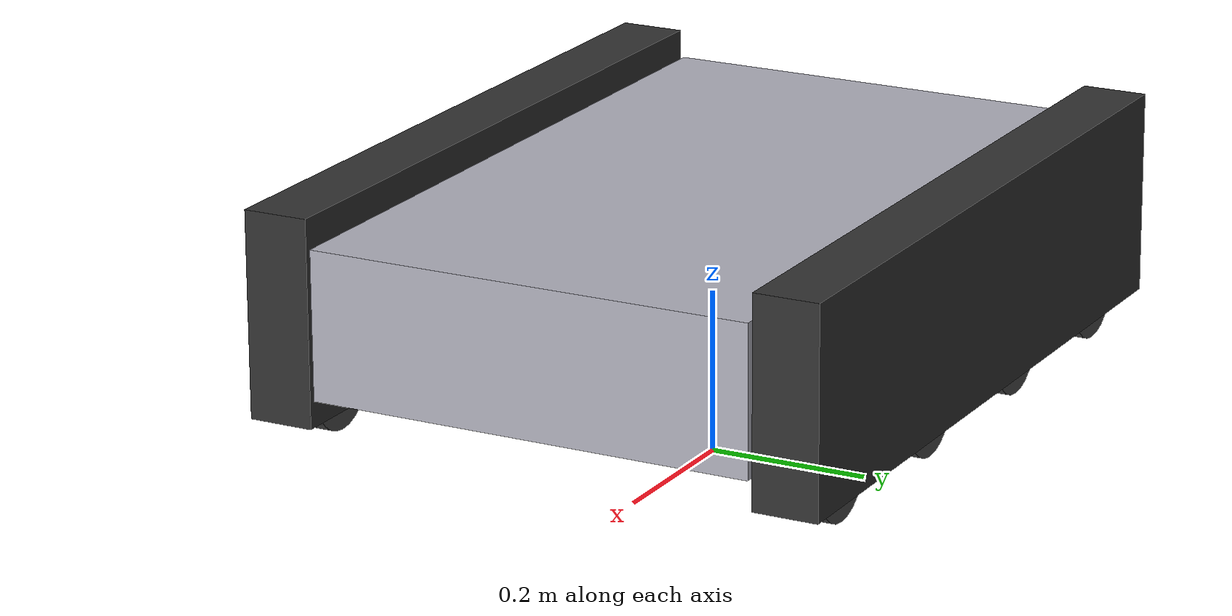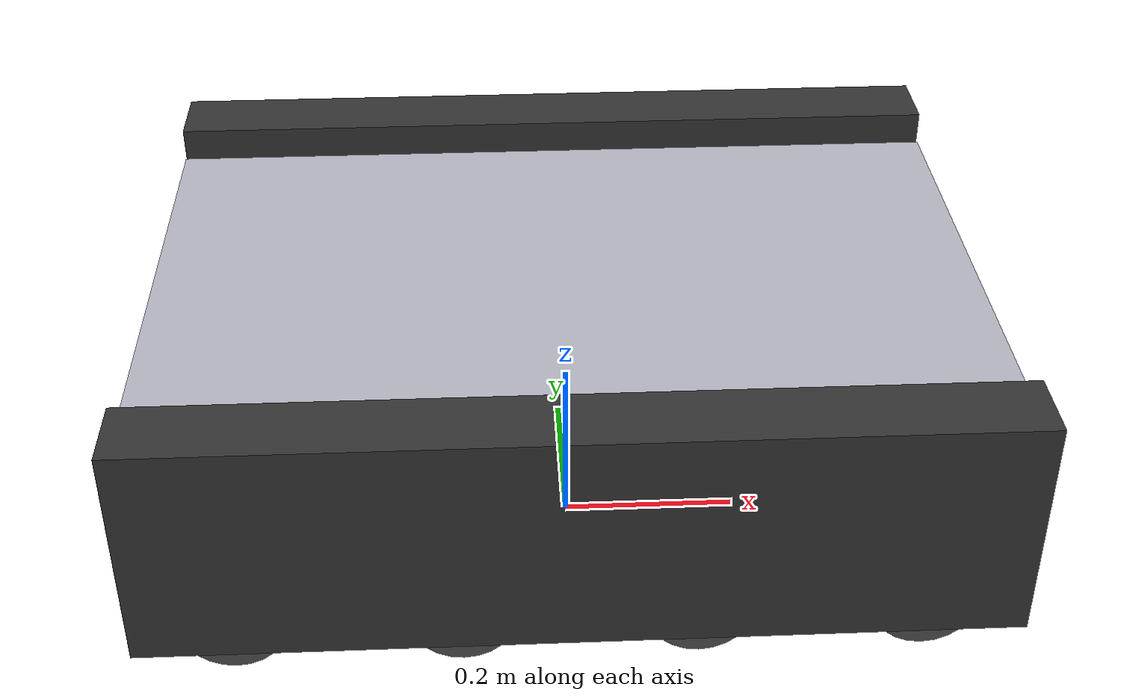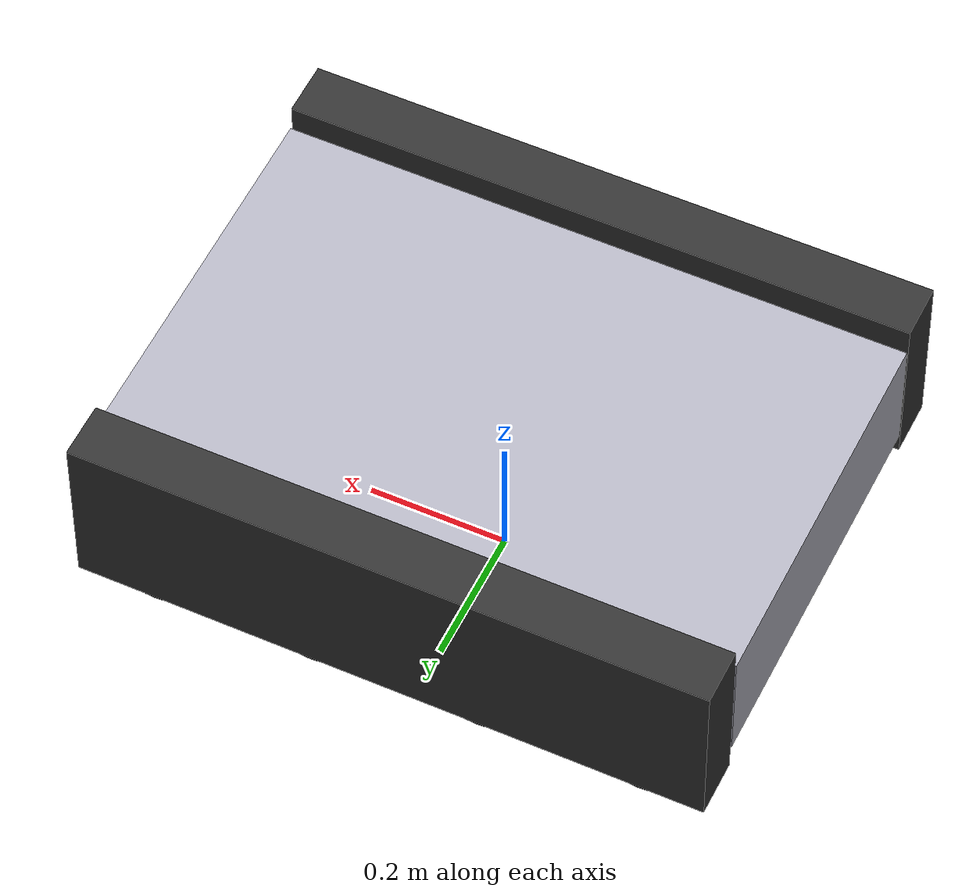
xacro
<?xml version="1.0"?>
<robot xmlns:xacro="http://www.ros.org/wiki/xacro" name="rover">

  <!-- Property Definitions -->
  <xacro:property name="body_l" value="0.90"/>
  <xacro:property name="body_w" value="0.55"/>
  <xacro:property name="body_h" value="0.18"/>
  <xacro:property name="wheel_radius" value="0.055"/>
  <xacro:property name="wheel_width"  value="0.04"/>
  <xacro:property name="side_y" value="0.32"/>
  <xacro:property name="body_z"  value="0.16"/>
  <xacro:property name="wheel_z" value="${wheel_radius}"/>
  <xacro:property name="plate_z" value="0.12"/>

  <!-- PI constant -->
  <xacro:property name="PI" value="3.1415926535897931"/>

  <!-- Base Footprint -->
  <link name="base_footprint"/>

  <joint name="base_footprint_joint" type="fixed">
    <parent link="base_footprint"/>
    <child link="base_link"/>
    <origin xyz="0 0 0.09" rpy="0 0 0"/>
  </joint>

  <!-- Base Link -->
  <link name="base_link">
    <visual>
      <origin xyz="0 0 ${body_z}" rpy="0 0 0"/>
      <geometry>
        <box size="${body_l} ${body_w} ${body_h}"/>
      </geometry>
      <material name="metal">
        <color rgba="0.7 0.7 0.75 1"/>
      </material>
    </visual>
    <collision>
      <origin xyz="0 0 ${body_z}" rpy="0 0 0"/>
      <geometry>
        <box size="${body_l} ${body_w} ${body_h}"/>
      </geometry>
    </collision>
    <inertial>
      <origin xyz="0 0 ${body_z}" rpy="0 0 0"/>
      <mass value="30"/>
      <inertia ixx="1.5" iyy="2.5" izz="3.0" ixy="0" ixz="0" iyz="0"/>
    </inertial>
  </link>

  <!-- Gazebo specific settings for base_link -->
  <gazebo reference="base_link">
    <material>Gazebo/Grey</material>
    <mu1>0.2</mu1>
    <mu2>0.2</mu2>
    <selfCollide>false</selfCollide>
    <gravity>true</gravity>
  </gazebo>

  <!-- Track Body Macro -->
  <xacro:macro name="track_body" params="name y_offset">
    <link name="${name}">
      <visual>
        <origin xyz="0 0 ${body_z}" rpy="0 0 0"/>
        <geometry>
          <box size="0.90 0.08 0.25"/>
        </geometry>
        <material name="dark">
          <color rgba="0.2 0.2 0.2 1"/>
        </material>
      </visual>
      <collision>
        <origin xyz="0 0 ${body_z}" rpy="0 0 0"/>
        <geometry>
          <box size="0.90 0.08 0.25"/>
        </geometry>
      </collision>
      <inertial>
        <origin xyz="0 0 ${body_z}" rpy="0 0 0"/>
        <mass value="2.0"/>
        <inertia ixx="0.05" iyy="0.15" izz="0.15" ixy="0" ixz="0" iyz="0"/>
      </inertial>
    </link>

    <joint name="${name}_joint" type="fixed">
      <parent link="base_link"/>
      <child link="${name}"/>
      <origin xyz="0 ${y_offset} 0" rpy="0 0 0"/>
    </joint>

    <!-- Gazebo specific settings for track bodies -->
    <gazebo reference="${name}">
      <material>Gazebo/Black</material>
      <mu1>1.0</mu1>
      <mu2>1.0</mu2>
      <selfCollide>false</selfCollide>
    </gazebo>
  </xacro:macro>

  <!-- Create Left and Right Track Bodies -->
  <xacro:track_body name="left_track_body" y_offset="${side_y}"/>
  <xacro:track_body name="right_track_body" y_offset="-${side_y}"/>

  <!-- Road Wheel Macro -->
  <xacro:macro name="road_wheel" params="name x y">
    <link name="${name}">
      <visual>
        <origin xyz="0 0 0" rpy="${PI/2} 0 0"/>
        <geometry>
          <cylinder radius="${wheel_radius}" length="${wheel_width}"/>
        </geometry>
        <material name="wheel">
          <color rgba="0.3 0.3 0.3 1"/>
        </material>
      </visual>
      <collision>
        <origin xyz="0 0 0" rpy="${PI/2} 0 0"/>
        <geometry>
          <cylinder radius="${wheel_radius}" length="${wheel_width}"/>
        </geometry>
      </collision>
      <inertial>
        <origin xyz="0 0 0" rpy="0 0 0"/>
        <mass value="0.8"/>
        <inertia ixx="0.0012" iyy="0.0012" izz="0.0020" ixy="0" ixz="0" iyz="0"/>
      </inertial>
    </link>

    <joint name="${name}_joint" type="continuous">
      <parent link="base_link"/>
      <child link="${name}"/>
      <origin xyz="${x} ${y} ${wheel_z}" rpy="0 0 0"/>
      <axis xyz="0 1 0"/>
      <dynamics damping="0.1" friction="0.1"/>
    </joint>

    <!-- Gazebo specific settings for wheels -->
    <gazebo reference="${name}">
      <mu1>2.0</mu1>
      <mu2>2.0</mu2>
      <kp>1000000.0</kp>
      <kd>100.0</kd>
      <minDepth>0.001</minDepth>
      <maxVel>1.0</maxVel>
      <material>Gazebo/DarkGrey</material>
      <selfCollide>false</selfCollide>
    </gazebo>
  </xacro:macro>

  <!-- Create Left Wheels -->
  <xacro:road_wheel name="lw1" x="0.35"  y="${side_y}"/>
  <xacro:road_wheel name="lw2" x="0.12"  y="${side_y}"/>
  <xacro:road_wheel name="lw3" x="-0.12" y="${side_y}"/>
  <xacro:road_wheel name="lw4" x="-0.35" y="${side_y}"/>

  <!-- Create Right Wheels -->
  <xacro:road_wheel name="rw1" x="0.35"  y="-${side_y}"/>
  <xacro:road_wheel name="rw2" x="0.12"  y="-${side_y}"/>
  <xacro:road_wheel name="rw3" x="-0.12" y="-${side_y}"/>
  <xacro:road_wheel name="rw4" x="-0.35" y="-${side_y}"/>

  <!-- Gazebo Differential Drive Plugin -->
  <gazebo>
    <plugin name="diff_drive" filename="libgazebo_ros_diff_drive.so">
      <ros>
        <namespace>/</namespace>
        <remapping>cmd_vel:=cmd_vel</remapping>
        <remapping>odom:=odom</remapping>
      </ros>

      <!-- Update rate -->
      <update_rate>50</update_rate>

      <!-- Number of wheel pairs -->
      <num_wheel_pairs>4</num_wheel_pairs>

      <!-- Left wheels -->
      <left_joint>lw1_joint</left_joint>
      <left_joint>lw2_joint</left_joint>
      <left_joint>lw3_joint</left_joint>
      <left_joint>lw4_joint</left_joint>

      <!-- Right wheels -->
      <right_joint>rw1_joint</right_joint>
      <right_joint>rw2_joint</right_joint>
      <right_joint>rw3_joint</right_joint>
      <right_joint>rw4_joint</right_joint>

      <!-- Kinematics -->
      <wheel_separation>${side_y * 2}</wheel_separation>
      <wheel_diameter>${wheel_radius * 2}</wheel_diameter>

      <!-- Limits -->
      <max_wheel_torque>20</max_wheel_torque>
      <max_wheel_acceleration>1.0</max_wheel_acceleration>

      <!-- Output -->
      <publish_odom>true</publish_odom>
      <publish_odom_tf>true</publish_odom_tf>
      <publish_wheel_tf>true</publish_wheel_tf>

      <!-- Frames -->
      <odometry_frame>odom</odometry_frame>
      <robot_base_frame>base_footprint</robot_base_frame>

      <!-- Odometry source -->
      <odometry_source>world</odometry_source>
    </plugin>
  </gazebo>

  <!-- Gazebo Physics Engine Settings -->
  <gazebo>
    <static>false</static>
  </gazebo>

</robot>
